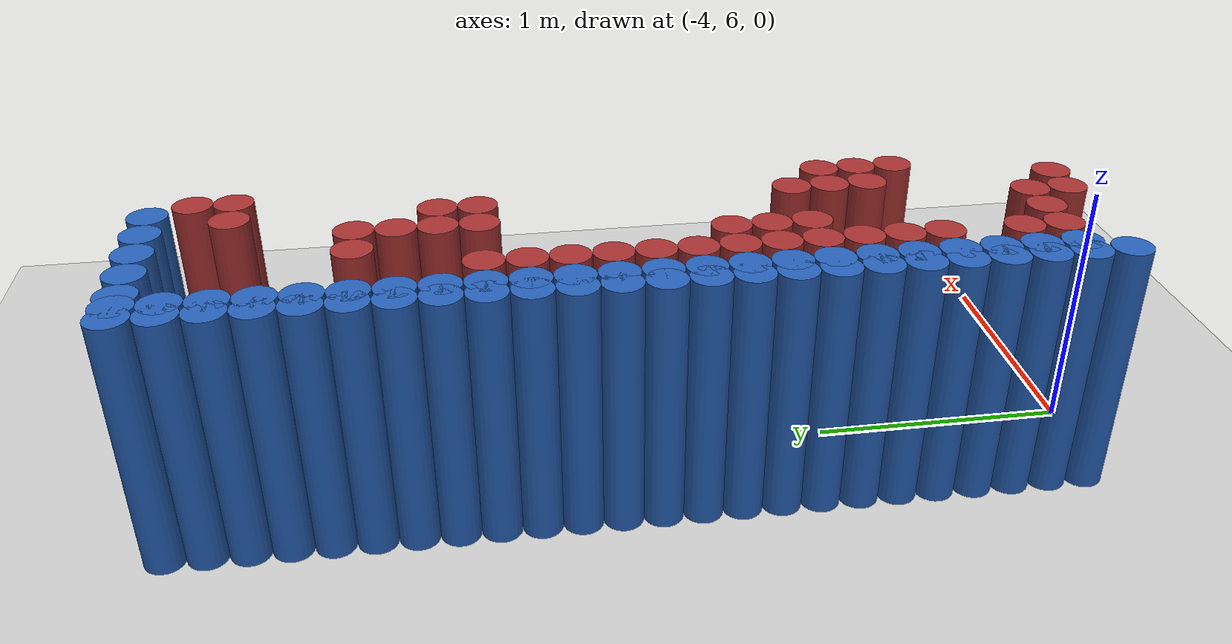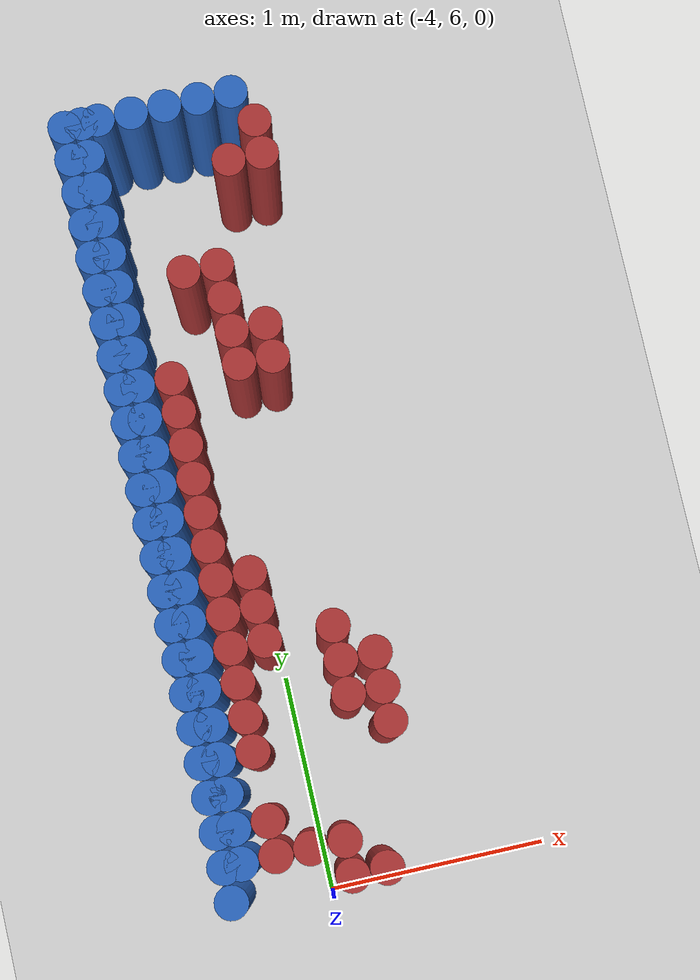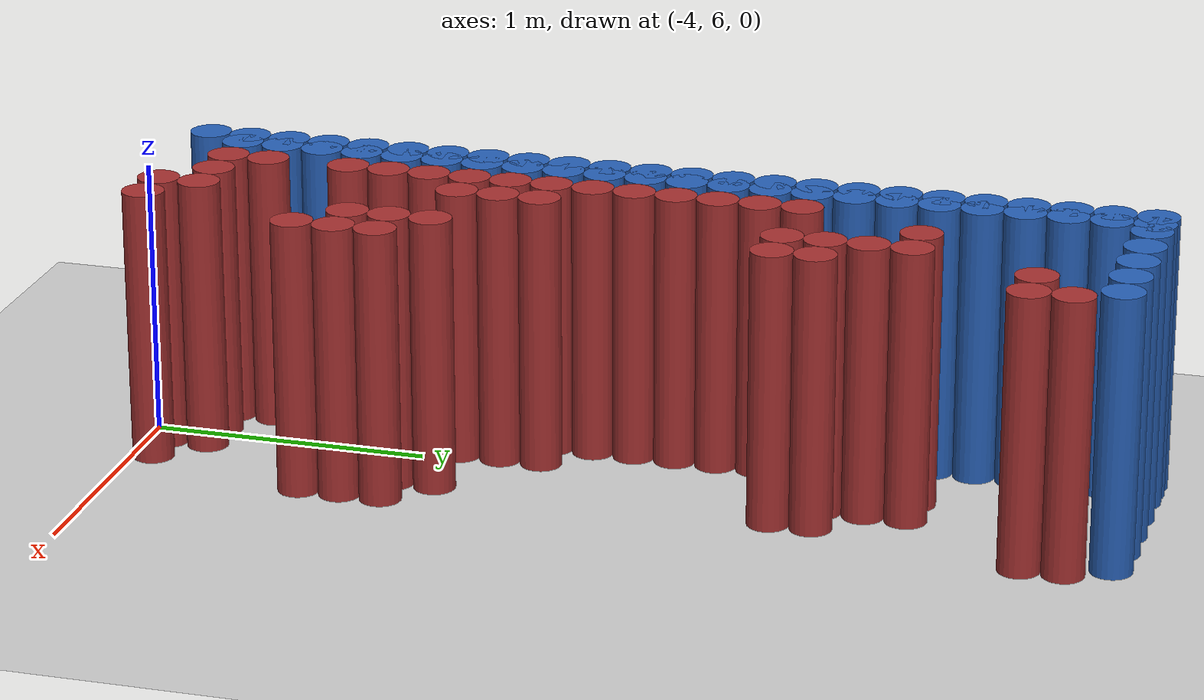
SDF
<sdf version="1.6">
 <world name="barn_world">
  <model name="ground_plane">
   <static>1</static>
   <link name="link">
    <collision name="collision">
     <geometry><plane><normal>0 0 1</normal><size>100 100</size></plane></geometry>
    </collision>
    <visual name="visual">
     <geometry><plane><normal>0 0 1</normal><size>100 100</size></plane></geometry>
     <material>
      <script><uri>file://media/materials/scripts/gazebo.material</uri><name>Gazebo/Grey</name></script>
     </material>
    </visual>
   </link>
  </model>
  <model name="unit_cylinder_133">
   <static>1</static>
   <pose>-4.3500 6.2250 0.5 0 0 0</pose>
   <link name="link">
    <collision name="collision">
     <geometry><cylinder><radius>0.075</radius><length>1</length></cylinder></geometry>
    </collision>
    <visual name="visual">
     <geometry><cylinder><radius>0.075</radius><length>1</length></cylinder></geometry>
     <material><ambient>0.152 0.379 0.72 1</ambient><diffuse>0.152 0.379 0.72 1</diffuse></material>
    </visual>
   </link>
  </model>
  <model name="unit_cylinder_134">
   <static>1</static>
   <pose>-4.3500 6.3750 0.5 0 0 0</pose>
   <link name="link">
    <collision name="collision">
     <geometry><cylinder><radius>0.075</radius><length>1</length></cylinder></geometry>
    </collision>
    <visual name="visual">
     <geometry><cylinder><radius>0.075</radius><length>1</length></cylinder></geometry>
     <material><ambient>0.152 0.379 0.72 1</ambient><diffuse>0.152 0.379 0.72 1</diffuse></material>
    </visual>
   </link>
  </model>
  <model name="unit_cylinder_135">
   <static>1</static>
   <pose>-4.3500 6.5250 0.5 0 0 0</pose>
   <link name="link">
    <collision name="collision">
     <geometry><cylinder><radius>0.075</radius><length>1</length></cylinder></geometry>
    </collision>
    <visual name="visual">
     <geometry><cylinder><radius>0.075</radius><length>1</length></cylinder></geometry>
     <material><ambient>0.152 0.379 0.72 1</ambient><diffuse>0.152 0.379 0.72 1</diffuse></material>
    </visual>
   </link>
  </model>
  <model name="unit_cylinder_136">
   <static>1</static>
   <pose>-4.3500 6.6750 0.5 0 0 0</pose>
   <link name="link">
    <collision name="collision">
     <geometry><cylinder><radius>0.075</radius><length>1</length></cylinder></geometry>
    </collision>
    <visual name="visual">
     <geometry><cylinder><radius>0.075</radius><length>1</length></cylinder></geometry>
     <material><ambient>0.152 0.379 0.72 1</ambient><diffuse>0.152 0.379 0.72 1</diffuse></material>
    </visual>
   </link>
  </model>
  <model name="unit_cylinder_137">
   <static>1</static>
   <pose>-4.3500 6.8250 0.5 0 0 0</pose>
   <link name="link">
    <collision name="collision">
     <geometry><cylinder><radius>0.075</radius><length>1</length></cylinder></geometry>
    </collision>
    <visual name="visual">
     <geometry><cylinder><radius>0.075</radius><length>1</length></cylinder></geometry>
     <material><ambient>0.152 0.379 0.72 1</ambient><diffuse>0.152 0.379 0.72 1</diffuse></material>
    </visual>
   </link>
  </model>
  <model name="unit_cylinder_138">
   <static>1</static>
   <pose>-4.3500 6.9750 0.5 0 0 0</pose>
   <link name="link">
    <collision name="collision">
     <geometry><cylinder><radius>0.075</radius><length>1</length></cylinder></geometry>
    </collision>
    <visual name="visual">
     <geometry><cylinder><radius>0.075</radius><length>1</length></cylinder></geometry>
     <material><ambient>0.152 0.379 0.72 1</ambient><diffuse>0.152 0.379 0.72 1</diffuse></material>
    </visual>
   </link>
  </model>
  <model name="unit_cylinder_139">
   <static>1</static>
   <pose>-4.3500 7.1250 0.5 0 0 0</pose>
   <link name="link">
    <collision name="collision">
     <geometry><cylinder><radius>0.075</radius><length>1</length></cylinder></geometry>
    </collision>
    <visual name="visual">
     <geometry><cylinder><radius>0.075</radius><length>1</length></cylinder></geometry>
     <material><ambient>0.152 0.379 0.72 1</ambient><diffuse>0.152 0.379 0.72 1</diffuse></material>
    </visual>
   </link>
  </model>
  <model name="unit_cylinder_140">
   <static>1</static>
   <pose>-4.3500 7.2750 0.5 0 0 0</pose>
   <link name="link">
    <collision name="collision">
     <geometry><cylinder><radius>0.075</radius><length>1</length></cylinder></geometry>
    </collision>
    <visual name="visual">
     <geometry><cylinder><radius>0.075</radius><length>1</length></cylinder></geometry>
     <material><ambient>0.152 0.379 0.72 1</ambient><diffuse>0.152 0.379 0.72 1</diffuse></material>
    </visual>
   </link>
  </model>
  <model name="unit_cylinder_141">
   <static>1</static>
   <pose>-4.3500 7.4250 0.5 0 0 0</pose>
   <link name="link">
    <collision name="collision">
     <geometry><cylinder><radius>0.075</radius><length>1</length></cylinder></geometry>
    </collision>
    <visual name="visual">
     <geometry><cylinder><radius>0.075</radius><length>1</length></cylinder></geometry>
     <material><ambient>0.152 0.379 0.72 1</ambient><diffuse>0.152 0.379 0.72 1</diffuse></material>
    </visual>
   </link>
  </model>
  <model name="unit_cylinder_142">
   <static>1</static>
   <pose>-4.3500 7.5750 0.5 0 0 0</pose>
   <link name="link">
    <collision name="collision">
     <geometry><cylinder><radius>0.075</radius><length>1</length></cylinder></geometry>
    </collision>
    <visual name="visual">
     <geometry><cylinder><radius>0.075</radius><length>1</length></cylinder></geometry>
     <material><ambient>0.152 0.379 0.72 1</ambient><diffuse>0.152 0.379 0.72 1</diffuse></material>
    </visual>
   </link>
  </model>
  <model name="unit_cylinder_143">
   <static>1</static>
   <pose>-4.3500 7.7250 0.5 0 0 0</pose>
   <link name="link">
    <collision name="collision">
     <geometry><cylinder><radius>0.075</radius><length>1</length></cylinder></geometry>
    </collision>
    <visual name="visual">
     <geometry><cylinder><radius>0.075</radius><length>1</length></cylinder></geometry>
     <material><ambient>0.152 0.379 0.72 1</ambient><diffuse>0.152 0.379 0.72 1</diffuse></material>
    </visual>
   </link>
  </model>
  <model name="unit_cylinder_144">
   <static>1</static>
   <pose>-4.3500 7.8750 0.5 0 0 0</pose>
   <link name="link">
    <collision name="collision">
     <geometry><cylinder><radius>0.075</radius><length>1</length></cylinder></geometry>
    </collision>
    <visual name="visual">
     <geometry><cylinder><radius>0.075</radius><length>1</length></cylinder></geometry>
     <material><ambient>0.152 0.379 0.72 1</ambient><diffuse>0.152 0.379 0.72 1</diffuse></material>
    </visual>
   </link>
  </model>
  <model name="unit_cylinder_145">
   <static>1</static>
   <pose>-4.3500 8.0250 0.5 0 0 0</pose>
   <link name="link">
    <collision name="collision">
     <geometry><cylinder><radius>0.075</radius><length>1</length></cylinder></geometry>
    </collision>
    <visual name="visual">
     <geometry><cylinder><radius>0.075</radius><length>1</length></cylinder></geometry>
     <material><ambient>0.152 0.379 0.72 1</ambient><diffuse>0.152 0.379 0.72 1</diffuse></material>
    </visual>
   </link>
  </model>
  <model name="unit_cylinder_146">
   <static>1</static>
   <pose>-4.3500 8.1750 0.5 0 0 0</pose>
   <link name="link">
    <collision name="collision">
     <geometry><cylinder><radius>0.075</radius><length>1</length></cylinder></geometry>
    </collision>
    <visual name="visual">
     <geometry><cylinder><radius>0.075</radius><length>1</length></cylinder></geometry>
     <material><ambient>0.152 0.379 0.72 1</ambient><diffuse>0.152 0.379 0.72 1</diffuse></material>
    </visual>
   </link>
  </model>
  <model name="unit_cylinder_147">
   <static>1</static>
   <pose>-4.3500 8.3250 0.5 0 0 0</pose>
   <link name="link">
    <collision name="collision">
     <geometry><cylinder><radius>0.075</radius><length>1</length></cylinder></geometry>
    </collision>
    <visual name="visual">
     <geometry><cylinder><radius>0.075</radius><length>1</length></cylinder></geometry>
     <material><ambient>0.152 0.379 0.72 1</ambient><diffuse>0.152 0.379 0.72 1</diffuse></material>
    </visual>
   </link>
  </model>
  <model name="unit_cylinder_148">
   <static>1</static>
   <pose>-4.3500 8.4750 0.5 0 0 0</pose>
   <link name="link">
    <collision name="collision">
     <geometry><cylinder><radius>0.075</radius><length>1</length></cylinder></geometry>
    </collision>
    <visual name="visual">
     <geometry><cylinder><radius>0.075</radius><length>1</length></cylinder></geometry>
     <material><ambient>0.152 0.379 0.72 1</ambient><diffuse>0.152 0.379 0.72 1</diffuse></material>
    </visual>
   </link>
  </model>
  <model name="unit_cylinder_149">
   <static>1</static>
   <pose>-4.3500 8.6250 0.5 0 0 0</pose>
   <link name="link">
    <collision name="collision">
     <geometry><cylinder><radius>0.075</radius><length>1</length></cylinder></geometry>
    </collision>
    <visual name="visual">
     <geometry><cylinder><radius>0.075</radius><length>1</length></cylinder></geometry>
     <material><ambient>0.152 0.379 0.72 1</ambient><diffuse>0.152 0.379 0.72 1</diffuse></material>
    </visual>
   </link>
  </model>
  <model name="unit_cylinder_150">
   <static>1</static>
   <pose>-4.3500 8.7750 0.5 0 0 0</pose>
   <link name="link">
    <collision name="collision">
     <geometry><cylinder><radius>0.075</radius><length>1</length></cylinder></geometry>
    </collision>
    <visual name="visual">
     <geometry><cylinder><radius>0.075</radius><length>1</length></cylinder></geometry>
     <material><ambient>0.152 0.379 0.72 1</ambient><diffuse>0.152 0.379 0.72 1</diffuse></material>
    </visual>
   </link>
  </model>
  <model name="unit_cylinder_151">
   <static>1</static>
   <pose>-4.3500 8.9250 0.5 0 0 0</pose>
   <link name="link">
    <collision name="collision">
     <geometry><cylinder><radius>0.075</radius><length>1</length></cylinder></geometry>
    </collision>
    <visual name="visual">
     <geometry><cylinder><radius>0.075</radius><length>1</length></cylinder></geometry>
     <material><ambient>0.152 0.379 0.72 1</ambient><diffuse>0.152 0.379 0.72 1</diffuse></material>
    </visual>
   </link>
  </model>
  <model name="unit_cylinder_152">
   <static>1</static>
   <pose>-4.3500 9.0750 0.5 0 0 0</pose>
   <link name="link">
    <collision name="collision">
     <geometry><cylinder><radius>0.075</radius><length>1</length></cylinder></geometry>
    </collision>
    <visual name="visual">
     <geometry><cylinder><radius>0.075</radius><length>1</length></cylinder></geometry>
     <material><ambient>0.152 0.379 0.72 1</ambient><diffuse>0.152 0.379 0.72 1</diffuse></material>
    </visual>
   </link>
  </model>
  <model name="unit_cylinder_153">
   <static>1</static>
   <pose>-4.3500 9.2250 0.5 0 0 0</pose>
   <link name="link">
    <collision name="collision">
     <geometry><cylinder><radius>0.075</radius><length>1</length></cylinder></geometry>
    </collision>
    <visual name="visual">
     <geometry><cylinder><radius>0.075</radius><length>1</length></cylinder></geometry>
     <material><ambient>0.152 0.379 0.72 1</ambient><diffuse>0.152 0.379 0.72 1</diffuse></material>
    </visual>
   </link>
  </model>
  <model name="unit_cylinder_154">
   <static>1</static>
   <pose>-4.3500 9.3750 0.5 0 0 0</pose>
   <link name="link">
    <collision name="collision">
     <geometry><cylinder><radius>0.075</radius><length>1</length></cylinder></geometry>
    </collision>
    <visual name="visual">
     <geometry><cylinder><radius>0.075</radius><length>1</length></cylinder></geometry>
     <material><ambient>0.152 0.379 0.72 1</ambient><diffuse>0.152 0.379 0.72 1</diffuse></material>
    </visual>
   </link>
  </model>
  <model name="unit_cylinder_155">
   <static>1</static>
   <pose>-4.3500 9.5250 0.5 0 0 0</pose>
   <link name="link">
    <collision name="collision">
     <geometry><cylinder><radius>0.075</radius><length>1</length></cylinder></geometry>
    </collision>
    <visual name="visual">
     <geometry><cylinder><radius>0.075</radius><length>1</length></cylinder></geometry>
     <material><ambient>0.152 0.379 0.72 1</ambient><diffuse>0.152 0.379 0.72 1</diffuse></material>
    </visual>
   </link>
  </model>
  <model name="unit_cylinder_162">
   <static>1</static>
   <pose>-4.2000 6.2250 0.5 0 0 0</pose>
   <link name="link">
    <collision name="collision">
     <geometry><cylinder><radius>0.075</radius><length>1</length></cylinder></geometry>
    </collision>
    <visual name="visual">
     <geometry><cylinder><radius>0.075</radius><length>1</length></cylinder></geometry>
     <material><ambient>0.648 0.192 0.192 1</ambient><diffuse>0.648 0.192 0.192 1</diffuse></material>
    </visual>
   </link>
  </model>
  <model name="unit_cylinder_163">
   <static>1</static>
   <pose>-4.2000 6.3750 0.5 0 0 0</pose>
   <link name="link">
    <collision name="collision">
     <geometry><cylinder><radius>0.075</radius><length>1</length></cylinder></geometry>
    </collision>
    <visual name="visual">
     <geometry><cylinder><radius>0.075</radius><length>1</length></cylinder></geometry>
     <material><ambient>0.648 0.192 0.192 1</ambient><diffuse>0.648 0.192 0.192 1</diffuse></material>
    </visual>
   </link>
  </model>
  <model name="unit_cylinder_164">
   <static>1</static>
   <pose>-4.2000 6.6750 0.5 0 0 0</pose>
   <link name="link">
    <collision name="collision">
     <geometry><cylinder><radius>0.075</radius><length>1</length></cylinder></geometry>
    </collision>
    <visual name="visual">
     <geometry><cylinder><radius>0.075</radius><length>1</length></cylinder></geometry>
     <material><ambient>0.648 0.192 0.192 1</ambient><diffuse>0.648 0.192 0.192 1</diffuse></material>
    </visual>
   </link>
  </model>
  <model name="unit_cylinder_165">
   <static>1</static>
   <pose>-4.2000 6.8250 0.5 0 0 0</pose>
   <link name="link">
    <collision name="collision">
     <geometry><cylinder><radius>0.075</radius><length>1</length></cylinder></geometry>
    </collision>
    <visual name="visual">
     <geometry><cylinder><radius>0.075</radius><length>1</length></cylinder></geometry>
     <material><ambient>0.648 0.192 0.192 1</ambient><diffuse>0.648 0.192 0.192 1</diffuse></material>
    </visual>
   </link>
  </model>
  <model name="unit_cylinder_166">
   <static>1</static>
   <pose>-4.2000 6.9750 0.5 0 0 0</pose>
   <link name="link">
    <collision name="collision">
     <geometry><cylinder><radius>0.075</radius><length>1</length></cylinder></geometry>
    </collision>
    <visual name="visual">
     <geometry><cylinder><radius>0.075</radius><length>1</length></cylinder></geometry>
     <material><ambient>0.648 0.192 0.192 1</ambient><diffuse>0.648 0.192 0.192 1</diffuse></material>
    </visual>
   </link>
  </model>
  <model name="unit_cylinder_167">
   <static>1</static>
   <pose>-4.2000 7.1250 0.5 0 0 0</pose>
   <link name="link">
    <collision name="collision">
     <geometry><cylinder><radius>0.075</radius><length>1</length></cylinder></geometry>
    </collision>
    <visual name="visual">
     <geometry><cylinder><radius>0.075</radius><length>1</length></cylinder></geometry>
     <material><ambient>0.648 0.192 0.192 1</ambient><diffuse>0.648 0.192 0.192 1</diffuse></material>
    </visual>
   </link>
  </model>
  <model name="unit_cylinder_168">
   <static>1</static>
   <pose>-4.2000 7.2750 0.5 0 0 0</pose>
   <link name="link">
    <collision name="collision">
     <geometry><cylinder><radius>0.075</radius><length>1</length></cylinder></geometry>
    </collision>
    <visual name="visual">
     <geometry><cylinder><radius>0.075</radius><length>1</length></cylinder></geometry>
     <material><ambient>0.648 0.192 0.192 1</ambient><diffuse>0.648 0.192 0.192 1</diffuse></material>
    </visual>
   </link>
  </model>
  <model name="unit_cylinder_169">
   <static>1</static>
   <pose>-4.2000 7.4250 0.5 0 0 0</pose>
   <link name="link">
    <collision name="collision">
     <geometry><cylinder><radius>0.075</radius><length>1</length></cylinder></geometry>
    </collision>
    <visual name="visual">
     <geometry><cylinder><radius>0.075</radius><length>1</length></cylinder></geometry>
     <material><ambient>0.648 0.192 0.192 1</ambient><diffuse>0.648 0.192 0.192 1</diffuse></material>
    </visual>
   </link>
  </model>
  <model name="unit_cylinder_170">
   <static>1</static>
   <pose>-4.2000 7.5750 0.5 0 0 0</pose>
   <link name="link">
    <collision name="collision">
     <geometry><cylinder><radius>0.075</radius><length>1</length></cylinder></geometry>
    </collision>
    <visual name="visual">
     <geometry><cylinder><radius>0.075</radius><length>1</length></cylinder></geometry>
     <material><ambient>0.648 0.192 0.192 1</ambient><diffuse>0.648 0.192 0.192 1</diffuse></material>
    </visual>
   </link>
  </model>
  <model name="unit_cylinder_171">
   <static>1</static>
   <pose>-4.2000 7.7250 0.5 0 0 0</pose>
   <link name="link">
    <collision name="collision">
     <geometry><cylinder><radius>0.075</radius><length>1</length></cylinder></geometry>
    </collision>
    <visual name="visual">
     <geometry><cylinder><radius>0.075</radius><length>1</length></cylinder></geometry>
     <material><ambient>0.648 0.192 0.192 1</ambient><diffuse>0.648 0.192 0.192 1</diffuse></material>
    </visual>
   </link>
  </model>
  <model name="unit_cylinder_172">
   <static>1</static>
   <pose>-4.2000 7.8750 0.5 0 0 0</pose>
   <link name="link">
    <collision name="collision">
     <geometry><cylinder><radius>0.075</radius><length>1</length></cylinder></geometry>
    </collision>
    <visual name="visual">
     <geometry><cylinder><radius>0.075</radius><length>1</length></cylinder></geometry>
     <material><ambient>0.648 0.192 0.192 1</ambient><diffuse>0.648 0.192 0.192 1</diffuse></material>
    </visual>
   </link>
  </model>
  <model name="unit_cylinder_173">
   <static>1</static>
   <pose>-4.2000 8.0250 0.5 0 0 0</pose>
   <link name="link">
    <collision name="collision">
     <geometry><cylinder><radius>0.075</radius><length>1</length></cylinder></geometry>
    </collision>
    <visual name="visual">
     <geometry><cylinder><radius>0.075</radius><length>1</length></cylinder></geometry>
     <material><ambient>0.648 0.192 0.192 1</ambient><diffuse>0.648 0.192 0.192 1</diffuse></material>
    </visual>
   </link>
  </model>
  <model name="unit_cylinder_174">
   <static>1</static>
   <pose>-4.2000 8.1750 0.5 0 0 0</pose>
   <link name="link">
    <collision name="collision">
     <geometry><cylinder><radius>0.075</radius><length>1</length></cylinder></geometry>
    </collision>
    <visual name="visual">
     <geometry><cylinder><radius>0.075</radius><length>1</length></cylinder></geometry>
     <material><ambient>0.648 0.192 0.192 1</ambient><diffuse>0.648 0.192 0.192 1</diffuse></material>
    </visual>
   </link>
  </model>
  <model name="unit_cylinder_175">
   <static>1</static>
   <pose>-4.2000 8.3250 0.5 0 0 0</pose>
   <link name="link">
    <collision name="collision">
     <geometry><cylinder><radius>0.075</radius><length>1</length></cylinder></geometry>
    </collision>
    <visual name="visual">
     <geometry><cylinder><radius>0.075</radius><length>1</length></cylinder></geometry>
     <material><ambient>0.648 0.192 0.192 1</ambient><diffuse>0.648 0.192 0.192 1</diffuse></material>
    </visual>
   </link>
  </model>
  <model name="unit_cylinder_179">
   <static>1</static>
   <pose>-4.0500 6.2250 0.5 0 0 0</pose>
   <link name="link">
    <collision name="collision">
     <geometry><cylinder><radius>0.075</radius><length>1</length></cylinder></geometry>
    </collision>
    <visual name="visual">
     <geometry><cylinder><radius>0.075</radius><length>1</length></cylinder></geometry>
     <material><ambient>0.648 0.192 0.192 1</ambient><diffuse>0.648 0.192 0.192 1</diffuse></material>
    </visual>
   </link>
  </model>
  <model name="unit_cylinder_180">
   <static>1</static>
   <pose>-4.0500 7.1250 0.5 0 0 0</pose>
   <link name="link">
    <collision name="collision">
     <geometry><cylinder><radius>0.075</radius><length>1</length></cylinder></geometry>
    </collision>
    <visual name="visual">
     <geometry><cylinder><radius>0.075</radius><length>1</length></cylinder></geometry>
     <material><ambient>0.648 0.192 0.192 1</ambient><diffuse>0.648 0.192 0.192 1</diffuse></material>
    </visual>
   </link>
  </model>
  <model name="unit_cylinder_181">
   <static>1</static>
   <pose>-4.0500 7.2750 0.5 0 0 0</pose>
   <link name="link">
    <collision name="collision">
     <geometry><cylinder><radius>0.075</radius><length>1</length></cylinder></geometry>
    </collision>
    <visual name="visual">
     <geometry><cylinder><radius>0.075</radius><length>1</length></cylinder></geometry>
     <material><ambient>0.648 0.192 0.192 1</ambient><diffuse>0.648 0.192 0.192 1</diffuse></material>
    </visual>
   </link>
  </model>
  <model name="unit_cylinder_182">
   <static>1</static>
   <pose>-4.0500 7.4250 0.5 0 0 0</pose>
   <link name="link">
    <collision name="collision">
     <geometry><cylinder><radius>0.075</radius><length>1</length></cylinder></geometry>
    </collision>
    <visual name="visual">
     <geometry><cylinder><radius>0.075</radius><length>1</length></cylinder></geometry>
     <material><ambient>0.648 0.192 0.192 1</ambient><diffuse>0.648 0.192 0.192 1</diffuse></material>
    </visual>
   </link>
  </model>
  <model name="unit_cylinder_183">
   <static>1</static>
   <pose>-4.0500 8.7750 0.5 0 0 0</pose>
   <link name="link">
    <collision name="collision">
     <geometry><cylinder><radius>0.075</radius><length>1</length></cylinder></geometry>
    </collision>
    <visual name="visual">
     <geometry><cylinder><radius>0.075</radius><length>1</length></cylinder></geometry>
     <material><ambient>0.648 0.192 0.192 1</ambient><diffuse>0.648 0.192 0.192 1</diffuse></material>
    </visual>
   </link>
  </model>
  <model name="unit_cylinder_185">
   <static>1</static>
   <pose>-3.9000 6.0750 0.5 0 0 0</pose>
   <link name="link">
    <collision name="collision">
     <geometry><cylinder><radius>0.075</radius><length>1</length></cylinder></geometry>
    </collision>
    <visual name="visual">
     <geometry><cylinder><radius>0.075</radius><length>1</length></cylinder></geometry>
     <material><ambient>0.648 0.192 0.192 1</ambient><diffuse>0.648 0.192 0.192 1</diffuse></material>
    </visual>
   </link>
  </model>
  <model name="unit_cylinder_186">
   <static>1</static>
   <pose>-3.9000 6.2250 0.5 0 0 0</pose>
   <link name="link">
    <collision name="collision">
     <geometry><cylinder><radius>0.075</radius><length>1</length></cylinder></geometry>
    </collision>
    <visual name="visual">
     <geometry><cylinder><radius>0.075</radius><length>1</length></cylinder></geometry>
     <material><ambient>0.648 0.192 0.192 1</ambient><diffuse>0.648 0.192 0.192 1</diffuse></material>
    </visual>
   </link>
  </model>
  <model name="unit_cylinder_187">
   <static>1</static>
   <pose>-3.9000 8.3250 0.5 0 0 0</pose>
   <link name="link">
    <collision name="collision">
     <geometry><cylinder><radius>0.075</radius><length>1</length></cylinder></geometry>
    </collision>
    <visual name="visual">
     <geometry><cylinder><radius>0.075</radius><length>1</length></cylinder></geometry>
     <material><ambient>0.648 0.192 0.192 1</ambient><diffuse>0.648 0.192 0.192 1</diffuse></material>
    </visual>
   </link>
  </model>
  <model name="unit_cylinder_188">
   <static>1</static>
   <pose>-3.9000 8.4750 0.5 0 0 0</pose>
   <link name="link">
    <collision name="collision">
     <geometry><cylinder><radius>0.075</radius><length>1</length></cylinder></geometry>
    </collision>
    <visual name="visual">
     <geometry><cylinder><radius>0.075</radius><length>1</length></cylinder></geometry>
     <material><ambient>0.648 0.192 0.192 1</ambient><diffuse>0.648 0.192 0.192 1</diffuse></material>
    </visual>
   </link>
  </model>
  <model name="unit_cylinder_189">
   <static>1</static>
   <pose>-3.9000 8.6250 0.5 0 0 0</pose>
   <link name="link">
    <collision name="collision">
     <geometry><cylinder><radius>0.075</radius><length>1</length></cylinder></geometry>
    </collision>
    <visual name="visual">
     <geometry><cylinder><radius>0.075</radius><length>1</length></cylinder></geometry>
     <material><ambient>0.648 0.192 0.192 1</ambient><diffuse>0.648 0.192 0.192 1</diffuse></material>
    </visual>
   </link>
  </model>
  <model name="unit_cylinder_190">
   <static>1</static>
   <pose>-3.9000 8.7750 0.5 0 0 0</pose>
   <link name="link">
    <collision name="collision">
     <geometry><cylinder><radius>0.075</radius><length>1</length></cylinder></geometry>
    </collision>
    <visual name="visual">
     <geometry><cylinder><radius>0.075</radius><length>1</length></cylinder></geometry>
     <material><ambient>0.648 0.192 0.192 1</ambient><diffuse>0.648 0.192 0.192 1</diffuse></material>
    </visual>
   </link>
  </model>
  <model name="unit_cylinder_192">
   <static>1</static>
   <pose>-3.7500 6.0750 0.5 0 0 0</pose>
   <link name="link">
    <collision name="collision">
     <geometry><cylinder><radius>0.075</radius><length>1</length></cylinder></geometry>
    </collision>
    <visual name="visual">
     <geometry><cylinder><radius>0.075</radius><length>1</length></cylinder></geometry>
     <material><ambient>0.648 0.192 0.192 1</ambient><diffuse>0.648 0.192 0.192 1</diffuse></material>
    </visual>
   </link>
  </model>
  <model name="unit_cylinder_193">
   <static>1</static>
   <pose>-3.7500 6.8250 0.5 0 0 0</pose>
   <link name="link">
    <collision name="collision">
     <geometry><cylinder><radius>0.075</radius><length>1</length></cylinder></geometry>
    </collision>
    <visual name="visual">
     <geometry><cylinder><radius>0.075</radius><length>1</length></cylinder></geometry>
     <material><ambient>0.648 0.192 0.192 1</ambient><diffuse>0.648 0.192 0.192 1</diffuse></material>
    </visual>
   </link>
  </model>
  <model name="unit_cylinder_194">
   <static>1</static>
   <pose>-3.7500 6.9750 0.5 0 0 0</pose>
   <link name="link">
    <collision name="collision">
     <geometry><cylinder><radius>0.075</radius><length>1</length></cylinder></geometry>
    </collision>
    <visual name="visual">
     <geometry><cylinder><radius>0.075</radius><length>1</length></cylinder></geometry>
     <material><ambient>0.648 0.192 0.192 1</ambient><diffuse>0.648 0.192 0.192 1</diffuse></material>
    </visual>
   </link>
  </model>
  <model name="unit_cylinder_195">
   <static>1</static>
   <pose>-3.7500 7.1250 0.5 0 0 0</pose>
   <link name="link">
    <collision name="collision">
     <geometry><cylinder><radius>0.075</radius><length>1</length></cylinder></geometry>
    </collision>
    <visual name="visual">
     <geometry><cylinder><radius>0.075</radius><length>1</length></cylinder></geometry>
     <material><ambient>0.648 0.192 0.192 1</ambient><diffuse>0.648 0.192 0.192 1</diffuse></material>
    </visual>
   </link>
  </model>
  <model name="unit_cylinder_196">
   <static>1</static>
   <pose>-3.7500 8.3250 0.5 0 0 0</pose>
   <link name="link">
    <collision name="collision">
     <geometry><cylinder><radius>0.075</radius><length>1</length></cylinder></geometry>
    </collision>
    <visual name="visual">
     <geometry><cylinder><radius>0.075</radius><length>1</length></cylinder></geometry>
     <material><ambient>0.648 0.192 0.192 1</ambient><diffuse>0.648 0.192 0.192 1</diffuse></material>
    </visual>
   </link>
  </model>
  <model name="unit_cylinder_197">
   <static>1</static>
   <pose>-3.7500 8.4750 0.5 0 0 0</pose>
   <link name="link">
    <collision name="collision">
     <geometry><cylinder><radius>0.075</radius><length>1</length></cylinder></geometry>
    </collision>
    <visual name="visual">
     <geometry><cylinder><radius>0.075</radius><length>1</length></cylinder></geometry>
     <material><ambient>0.648 0.192 0.192 1</ambient><diffuse>0.648 0.192 0.192 1</diffuse></material>
    </visual>
   </link>
  </model>
  <model name="unit_cylinder_198">
   <static>1</static>
   <pose>-3.7500 9.2250 0.5 0 0 0</pose>
   <link name="link">
    <collision name="collision">
     <geometry><cylinder><radius>0.075</radius><length>1</length></cylinder></geometry>
    </collision>
    <visual name="visual">
     <geometry><cylinder><radius>0.075</radius><length>1</length></cylinder></geometry>
     <material><ambient>0.648 0.192 0.192 1</ambient><diffuse>0.648 0.192 0.192 1</diffuse></material>
    </visual>
   </link>
  </model>
  <model name="unit_cylinder_201">
   <static>1</static>
   <pose>-3.6000 6.6750 0.5 0 0 0</pose>
   <link name="link">
    <collision name="collision">
     <geometry><cylinder><radius>0.075</radius><length>1</length></cylinder></geometry>
    </collision>
    <visual name="visual">
     <geometry><cylinder><radius>0.075</radius><length>1</length></cylinder></geometry>
     <material><ambient>0.648 0.192 0.192 1</ambient><diffuse>0.648 0.192 0.192 1</diffuse></material>
    </visual>
   </link>
  </model>
  <model name="unit_cylinder_202">
   <static>1</static>
   <pose>-3.6000 6.8250 0.5 0 0 0</pose>
   <link name="link">
    <collision name="collision">
     <geometry><cylinder><radius>0.075</radius><length>1</length></cylinder></geometry>
    </collision>
    <visual name="visual">
     <geometry><cylinder><radius>0.075</radius><length>1</length></cylinder></geometry>
     <material><ambient>0.648 0.192 0.192 1</ambient><diffuse>0.648 0.192 0.192 1</diffuse></material>
    </visual>
   </link>
  </model>
  <model name="unit_cylinder_203">
   <static>1</static>
   <pose>-3.6000 6.9750 0.5 0 0 0</pose>
   <link name="link">
    <collision name="collision">
     <geometry><cylinder><radius>0.075</radius><length>1</length></cylinder></geometry>
    </collision>
    <visual name="visual">
     <geometry><cylinder><radius>0.075</radius><length>1</length></cylinder></geometry>
     <material><ambient>0.648 0.192 0.192 1</ambient><diffuse>0.648 0.192 0.192 1</diffuse></material>
    </visual>
   </link>
  </model>
  <model name="unit_cylinder_204">
   <static>1</static>
   <pose>-3.6000 9.2250 0.5 0 0 0</pose>
   <link name="link">
    <collision name="collision">
     <geometry><cylinder><radius>0.075</radius><length>1</length></cylinder></geometry>
    </collision>
    <visual name="visual">
     <geometry><cylinder><radius>0.075</radius><length>1</length></cylinder></geometry>
     <material><ambient>0.648 0.192 0.192 1</ambient><diffuse>0.648 0.192 0.192 1</diffuse></material>
    </visual>
   </link>
  </model>
  <model name="unit_cylinder_205">
   <static>1</static>
   <pose>-3.6000 9.3750 0.5 0 0 0</pose>
   <link name="link">
    <collision name="collision">
     <geometry><cylinder><radius>0.075</radius><length>1</length></cylinder></geometry>
    </collision>
    <visual name="visual">
     <geometry><cylinder><radius>0.075</radius><length>1</length></cylinder></geometry>
     <material><ambient>0.648 0.192 0.192 1</ambient><diffuse>0.648 0.192 0.192 1</diffuse></material>
    </visual>
   </link>
  </model>
  <model name="unit_cylinder_379">
   <static>1</static>
   <pose>-3.6750 9.5250 0.5 0 0 0</pose>
   <link name="link">
    <collision name="collision">
     <geometry><cylinder><radius>0.075</radius><length>1</length></cylinder></geometry>
    </collision>
    <visual name="visual">
     <geometry><cylinder><radius>0.075</radius><length>1</length></cylinder></geometry>
     <material><ambient>0.152 0.379 0.72 1</ambient><diffuse>0.152 0.379 0.72 1</diffuse></material>
    </visual>
   </link>
  </model>
  <model name="unit_cylinder_380">
   <static>1</static>
   <pose>-3.8250 9.5250 0.5 0 0 0</pose>
   <link name="link">
    <collision name="collision">
     <geometry><cylinder><radius>0.075</radius><length>1</length></cylinder></geometry>
    </collision>
    <visual name="visual">
     <geometry><cylinder><radius>0.075</radius><length>1</length></cylinder></geometry>
     <material><ambient>0.152 0.379 0.72 1</ambient><diffuse>0.152 0.379 0.72 1</diffuse></material>
    </visual>
   </link>
  </model>
  <model name="unit_cylinder_381">
   <static>1</static>
   <pose>-3.9750 9.5250 0.5 0 0 0</pose>
   <link name="link">
    <collision name="collision">
     <geometry><cylinder><radius>0.075</radius><length>1</length></cylinder></geometry>
    </collision>
    <visual name="visual">
     <geometry><cylinder><radius>0.075</radius><length>1</length></cylinder></geometry>
     <material><ambient>0.152 0.379 0.72 1</ambient><diffuse>0.152 0.379 0.72 1</diffuse></material>
    </visual>
   </link>
  </model>
  <model name="unit_cylinder_382">
   <static>1</static>
   <pose>-4.1250 9.5250 0.5 0 0 0</pose>
   <link name="link">
    <collision name="collision">
     <geometry><cylinder><radius>0.075</radius><length>1</length></cylinder></geometry>
    </collision>
    <visual name="visual">
     <geometry><cylinder><radius>0.075</radius><length>1</length></cylinder></geometry>
     <material><ambient>0.152 0.379 0.72 1</ambient><diffuse>0.152 0.379 0.72 1</diffuse></material>
    </visual>
   </link>
  </model>
  <model name="unit_cylinder_383">
   <static>1</static>
   <pose>-4.2750 9.5250 0.5 0 0 0</pose>
   <link name="link">
    <collision name="collision">
     <geometry><cylinder><radius>0.075</radius><length>1</length></cylinder></geometry>
    </collision>
    <visual name="visual">
     <geometry><cylinder><radius>0.075</radius><length>1</length></cylinder></geometry>
     <material><ambient>0.152 0.379 0.72 1</ambient><diffuse>0.152 0.379 0.72 1</diffuse></material>
    </visual>
   </link>
  </model>
  <model name="unit_cylinder_384">
   <static>1</static>
   <pose>-4.4250 9.5250 0.5 0 0 0</pose>
   <link name="link">
    <collision name="collision">
     <geometry><cylinder><radius>0.075</radius><length>1</length></cylinder></geometry>
    </collision>
    <visual name="visual">
     <geometry><cylinder><radius>0.075</radius><length>1</length></cylinder></geometry>
     <material><ambient>0.152 0.379 0.72 1</ambient><diffuse>0.152 0.379 0.72 1</diffuse></material>
    </visual>
   </link>
  </model>
  <model name="unit_cylinder_398">
   <static>1</static>
   <pose>-4.4250 6.0750 0.5 0 0 0</pose>
   <link name="link">
    <collision name="collision">
     <geometry><cylinder><radius>0.075</radius><length>1</length></cylinder></geometry>
    </collision>
    <visual name="visual">
     <geometry><cylinder><radius>0.075</radius><length>1</length></cylinder></geometry>
     <material><ambient>0.152 0.379 0.72 1</ambient><diffuse>0.152 0.379 0.72 1</diffuse></material>
    </visual>
   </link>
  </model>
  <model name="unit_cylinder_400">
   <static>1</static>
   <pose>-4.4250 6.2250 0.5 0 0 0</pose>
   <link name="link">
    <collision name="collision">
     <geometry><cylinder><radius>0.075</radius><length>1</length></cylinder></geometry>
    </collision>
    <visual name="visual">
     <geometry><cylinder><radius>0.075</radius><length>1</length></cylinder></geometry>
     <material><ambient>0.152 0.379 0.72 1</ambient><diffuse>0.152 0.379 0.72 1</diffuse></material>
    </visual>
   </link>
  </model>
  <model name="unit_cylinder_402">
   <static>1</static>
   <pose>-4.4250 6.3750 0.5 0 0 0</pose>
   <link name="link">
    <collision name="collision">
     <geometry><cylinder><radius>0.075</radius><length>1</length></cylinder></geometry>
    </collision>
    <visual name="visual">
     <geometry><cylinder><radius>0.075</radius><length>1</length></cylinder></geometry>
     <material><ambient>0.152 0.379 0.72 1</ambient><diffuse>0.152 0.379 0.72 1</diffuse></material>
    </visual>
   </link>
  </model>
  <model name="unit_cylinder_404">
   <static>1</static>
   <pose>-4.4250 6.5250 0.5 0 0 0</pose>
   <link name="link">
    <collision name="collision">
     <geometry><cylinder><radius>0.075</radius><length>1</length></cylinder></geometry>
    </collision>
    <visual name="visual">
     <geometry><cylinder><radius>0.075</radius><length>1</length></cylinder></geometry>
     <material><ambient>0.152 0.379 0.72 1</ambient><diffuse>0.152 0.379 0.72 1</diffuse></material>
    </visual>
   </link>
  </model>
  <model name="unit_cylinder_406">
   <static>1</static>
   <pose>-4.4250 6.6750 0.5 0 0 0</pose>
   <link name="link">
    <collision name="collision">
     <geometry><cylinder><radius>0.075</radius><length>1</length></cylinder></geometry>
    </collision>
    <visual name="visual">
     <geometry><cylinder><radius>0.075</radius><length>1</length></cylinder></geometry>
     <material><ambient>0.152 0.379 0.72 1</ambient><diffuse>0.152 0.379 0.72 1</diffuse></material>
    </visual>
   </link>
  </model>
  <model name="unit_cylinder_408">
   <static>1</static>
   <pose>-4.4250 6.8250 0.5 0 0 0</pose>
   <link name="link">
    <collision name="collision">
     <geometry><cylinder><radius>0.075</radius><length>1</length></cylinder></geometry>
    </collision>
    <visual name="visual">
     <geometry><cylinder><radius>0.075</radius><length>1</length></cylinder></geometry>
     <material><ambient>0.152 0.379 0.72 1</ambient><diffuse>0.152 0.379 0.72 1</diffuse></material>
    </visual>
   </link>
  </model>
  <model name="unit_cylinder_410">
   <static>1</static>
   <pose>-4.4250 6.9750 0.5 0 0 0</pose>
   <link name="link">
    <collision name="collision">
     <geometry><cylinder><radius>0.075</radius><length>1</length></cylinder></geometry>
    </collision>
    <visual name="visual">
     <geometry><cylinder><radius>0.075</radius><length>1</length></cylinder></geometry>
     <material><ambient>0.152 0.379 0.72 1</ambient><diffuse>0.152 0.379 0.72 1</diffuse></material>
    </visual>
   </link>
  </model>
  <model name="unit_cylinder_412">
   <static>1</static>
   <pose>-4.4250 7.1250 0.5 0 0 0</pose>
   <link name="link">
    <collision name="collision">
     <geometry><cylinder><radius>0.075</radius><length>1</length></cylinder></geometry>
    </collision>
    <visual name="visual">
     <geometry><cylinder><radius>0.075</radius><length>1</length></cylinder></geometry>
     <material><ambient>0.152 0.379 0.72 1</ambient><diffuse>0.152 0.379 0.72 1</diffuse></material>
    </visual>
   </link>
  </model>
  <model name="unit_cylinder_414">
   <static>1</static>
   <pose>-4.4250 7.2750 0.5 0 0 0</pose>
   <link name="link">
    <collision name="collision">
     <geometry><cylinder><radius>0.075</radius><length>1</length></cylinder></geometry>
    </collision>
    <visual name="visual">
     <geometry><cylinder><radius>0.075</radius><length>1</length></cylinder></geometry>
     <material><ambient>0.152 0.379 0.72 1</ambient><diffuse>0.152 0.379 0.72 1</diffuse></material>
    </visual>
   </link>
  </model>
  <model name="unit_cylinder_416">
   <static>1</static>
   <pose>-4.4250 7.4250 0.5 0 0 0</pose>
   <link name="link">
    <collision name="collision">
     <geometry><cylinder><radius>0.075</radius><length>1</length></cylinder></geometry>
    </collision>
    <visual name="visual">
     <geometry><cylinder><radius>0.075</radius><length>1</length></cylinder></geometry>
     <material><ambient>0.152 0.379 0.72 1</ambient><diffuse>0.152 0.379 0.72 1</diffuse></material>
    </visual>
   </link>
  </model>
  <model name="unit_cylinder_418">
   <static>1</static>
   <pose>-4.4250 7.5750 0.5 0 0 0</pose>
   <link name="link">
    <collision name="collision">
     <geometry><cylinder><radius>0.075</radius><length>1</length></cylinder></geometry>
    </collision>
    <visual name="visual">
     <geometry><cylinder><radius>0.075</radius><length>1</length></cylinder></geometry>
     <material><ambient>0.152 0.379 0.72 1</ambient><diffuse>0.152 0.379 0.72 1</diffuse></material>
    </visual>
   </link>
  </model>
  <model name="unit_cylinder_420">
   <static>1</static>
   <pose>-4.4250 7.7250 0.5 0 0 0</pose>
   <link name="link">
    <collision name="collision">
     <geometry><cylinder><radius>0.075</radius><length>1</length></cylinder></geometry>
    </collision>
    <visual name="visual">
     <geometry><cylinder><radius>0.075</radius><length>1</length></cylinder></geometry>
     <material><ambient>0.152 0.379 0.72 1</ambient><diffuse>0.152 0.379 0.72 1</diffuse></material>
    </visual>
   </link>
  </model>
  <model name="unit_cylinder_422">
   <static>1</static>
   <pose>-4.4250 7.8750 0.5 0 0 0</pose>
   <link name="link">
    <collision name="collision">
     <geometry><cylinder><radius>0.075</radius><length>1</length></cylinder></geometry>
    </collision>
    <visual name="visual">
     <geometry><cylinder><radius>0.075</radius><length>1</length></cylinder></geometry>
     <material><ambient>0.152 0.379 0.72 1</ambient><diffuse>0.152 0.379 0.72 1</diffuse></material>
    </visual>
   </link>
  </model>
  <model name="unit_cylinder_424">
   <static>1</static>
   <pose>-4.4250 8.0250 0.5 0 0 0</pose>
   <link name="link">
    <collision name="collision">
     <geometry><cylinder><radius>0.075</radius><length>1</length></cylinder></geometry>
    </collision>
    <visual name="visual">
     <geometry><cylinder><radius>0.075</radius><length>1</length></cylinder></geometry>
     <material><ambient>0.152 0.379 0.72 1</ambient><diffuse>0.152 0.379 0.72 1</diffuse></material>
    </visual>
   </link>
  </model>
  <model name="unit_cylinder_426">
   <static>1</static>
   <pose>-4.4250 8.1750 0.5 0 0 0</pose>
   <link name="link">
    <collision name="collision">
     <geometry><cylinder><radius>0.075</radius><length>1</length></cylinder></geometry>
    </collision>
    <visual name="visual">
     <geometry><cylinder><radius>0.075</radius><length>1</length></cylinder></geometry>
     <material><ambient>0.152 0.379 0.72 1</ambient><diffuse>0.152 0.379 0.72 1</diffuse></material>
    </visual>
   </link>
  </model>
  <model name="unit_cylinder_428">
   <static>1</static>
   <pose>-4.4250 8.3250 0.5 0 0 0</pose>
   <link name="link">
    <collision name="collision">
     <geometry><cylinder><radius>0.075</radius><length>1</length></cylinder></geometry>
    </collision>
    <visual name="visual">
     <geometry><cylinder><radius>0.075</radius><length>1</length></cylinder></geometry>
     <material><ambient>0.152 0.379 0.72 1</ambient><diffuse>0.152 0.379 0.72 1</diffuse></material>
    </visual>
   </link>
  </model>
  <model name="unit_cylinder_430">
   <static>1</static>
   <pose>-4.4250 8.4750 0.5 0 0 0</pose>
   <link name="link">
    <collision name="collision">
     <geometry><cylinder><radius>0.075</radius><length>1</length></cylinder></geometry>
    </collision>
    <visual name="visual">
     <geometry><cylinder><radius>0.075</radius><length>1</length></cylinder></geometry>
     <material><ambient>0.152 0.379 0.72 1</ambient><diffuse>0.152 0.379 0.72 1</diffuse></material>
    </visual>
   </link>
  </model>
  <model name="unit_cylinder_432">
   <static>1</static>
   <pose>-4.4250 8.6250 0.5 0 0 0</pose>
   <link name="link">
    <collision name="collision">
     <geometry><cylinder><radius>0.075</radius><length>1</length></cylinder></geometry>
    </collision>
    <visual name="visual">
     <geometry><cylinder><radius>0.075</radius><length>1</length></cylinder></geometry>
     <material><ambient>0.152 0.379 0.72 1</ambient><diffuse>0.152 0.379 0.72 1</diffuse></material>
    </visual>
   </link>
  </model>
  <model name="unit_cylinder_434">
   <static>1</static>
   <pose>-4.4250 8.7750 0.5 0 0 0</pose>
   <link name="link">
    <collision name="collision">
     <geometry><cylinder><radius>0.075</radius><length>1</length></cylinder></geometry>
    </collision>
    <visual name="visual">
     <geometry><cylinder><radius>0.075</radius><length>1</length></cylinder></geometry>
     <material><ambient>0.152 0.379 0.72 1</ambient><diffuse>0.152 0.379 0.72 1</diffuse></material>
    </visual>
   </link>
  </model>
  <model name="unit_cylinder_436">
   <static>1</static>
   <pose>-4.4250 8.9250 0.5 0 0 0</pose>
   <link name="link">
    <collision name="collision">
     <geometry><cylinder><radius>0.075</radius><length>1</length></cylinder></geometry>
    </collision>
    <visual name="visual">
     <geometry><cylinder><radius>0.075</radius><length>1</length></cylinder></geometry>
     <material><ambient>0.152 0.379 0.72 1</ambient><diffuse>0.152 0.379 0.72 1</diffuse></material>
    </visual>
   </link>
  </model>
  <model name="unit_cylinder_438">
   <static>1</static>
   <pose>-4.4250 9.0750 0.5 0 0 0</pose>
   <link name="link">
    <collision name="collision">
     <geometry><cylinder><radius>0.075</radius><length>1</length></cylinder></geometry>
    </collision>
    <visual name="visual">
     <geometry><cylinder><radius>0.075</radius><length>1</length></cylinder></geometry>
     <material><ambient>0.152 0.379 0.72 1</ambient><diffuse>0.152 0.379 0.72 1</diffuse></material>
    </visual>
   </link>
  </model>
  <model name="unit_cylinder_440">
   <static>1</static>
   <pose>-4.4250 9.2250 0.5 0 0 0</pose>
   <link name="link">
    <collision name="collision">
     <geometry><cylinder><radius>0.075</radius><length>1</length></cylinder></geometry>
    </collision>
    <visual name="visual">
     <geometry><cylinder><radius>0.075</radius><length>1</length></cylinder></geometry>
     <material><ambient>0.152 0.379 0.72 1</ambient><diffuse>0.152 0.379 0.72 1</diffuse></material>
    </visual>
   </link>
  </model>
  <model name="unit_cylinder_442">
   <static>1</static>
   <pose>-4.4250 9.3750 0.5 0 0 0</pose>
   <link name="link">
    <collision name="collision">
     <geometry><cylinder><radius>0.075</radius><length>1</length></cylinder></geometry>
    </collision>
    <visual name="visual">
     <geometry><cylinder><radius>0.075</radius><length>1</length></cylinder></geometry>
     <material><ambient>0.152 0.379 0.72 1</ambient><diffuse>0.152 0.379 0.72 1</diffuse></material>
    </visual>
   </link>
  </model>
 </world>
</sdf>
